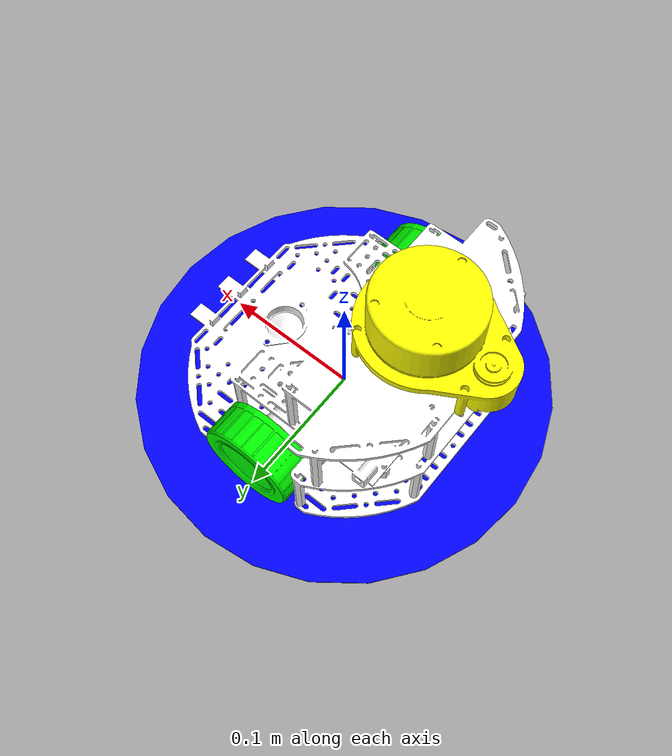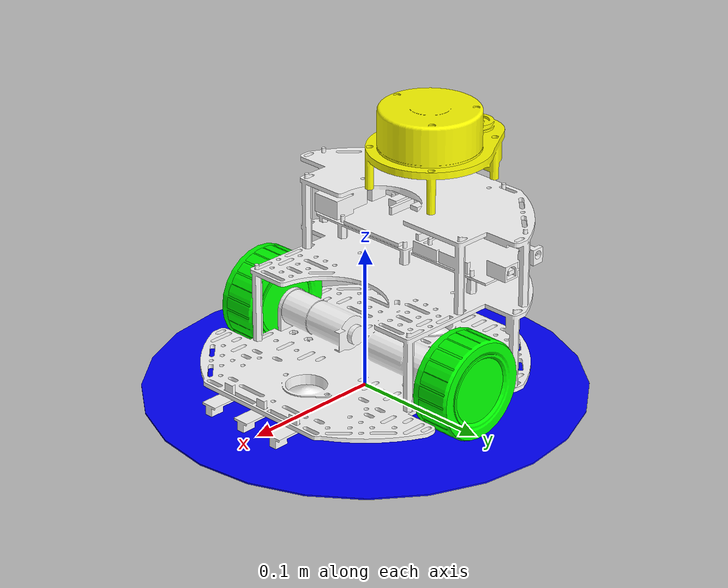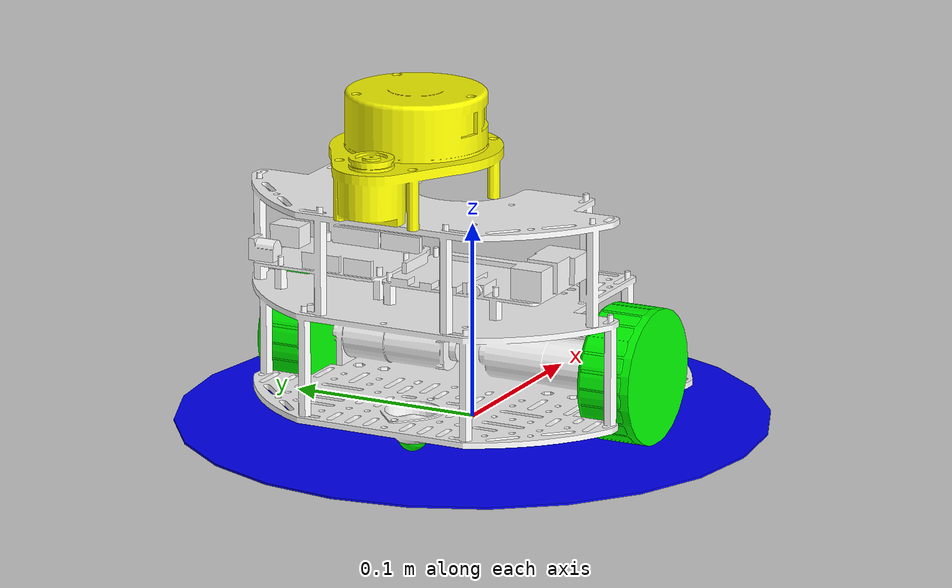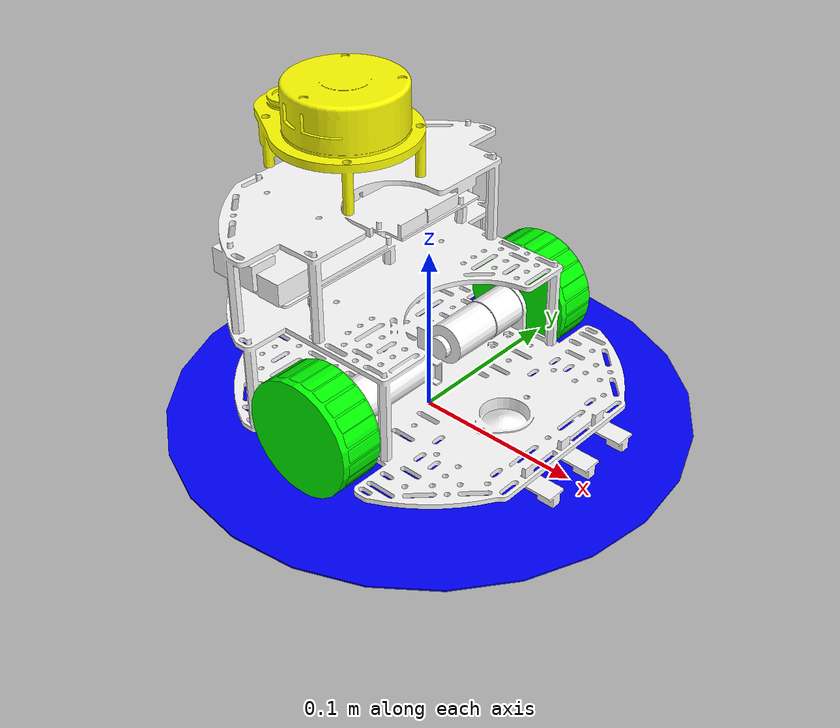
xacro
<?xml version="1.0" encoding="utf-8"?>
<robot name="frob"
	xmlns:xacro="http://www.ros.org/wiki/xacro">

	<xacro:property name="clearance" value="0" />
	<xacro:property name="wheel_radius" value="0.0344"/>
	<xacro:property name="wheel_separation" value="0.152"/>
	<xacro:property name="wheel_width" value="0.026"/>
	<xacro:property name="PI" value="3.1415926"/>

		<xacro:include filename="$(find frob_description)/urdf/frob_matherials.xacro" />

	<link name="base_link">
		<visual>
			<origin xyz="0 0 0" rpy="0 0 0" />
			<geometry>
				<sphere radius="0.001" />
			</geometry>
		</visual>
	</link>

	<link name="base_footprint">
		<visual>
			<origin xyz="0 0 0" rpy="0 0 0" />
			<geometry>
				<cylinder length="0.001" radius="0.150" />
			</geometry>
			<material name="Blue" />
		</visual>
	</link>

	<link name="robot_base">
		<inertial>
			<origin xyz="-0.017258 -0.00044491 0.079113" rpy="0 0 0"/>
			<mass value="0.71798"/>
			<inertia ixx="0.00077488" ixy="-3.248E-06" ixz="-9.2329E-06" iyy="0.00075836" iyz="2.2456E-06" izz="0.0014158"/>
		</inertial>

		<visual>
			<origin xyz="0 0 0" rpy="0 0 0" />
			<geometry>
				<mesh filename="package://frob_description/meshes/frob_base.STL" />
			</geometry>
			<material name="White" />
		</visual>

		<collision>
			<origin xyz="0 0 0" rpy="0 0 0" />
			<geometry>
				<mesh filename="package://frob_description/meshes/frob_base.STL" />
			</geometry>
		</collision>
	</link>

	<joint name="base_link_to_frob_base" type="fixed">
		<origin xyz="0 0 0" rpy="0 0 0" />
		<parent link="base_link" />
		<child link="robot_base" />
	</joint>

	<joint name="base_footprint_to_base_link" type="fixed">
		<origin xyz="0 0 ${clearance}" rpy="0 0 0" />
		<parent link="base_footprint" />
		<child link="base_link" />
	</joint>

	<xacro:include filename="$(find frob_description)/urdf/frob_left_wheel.xacro" />
	<xacro:include filename="$(find frob_description)/urdf/frob_right_wheel.xacro" />
	<xacro:include filename="$(find frob_description)/urdf/frob_caster_wheel.xacro" />
	<xacro:include filename="$(find frob_description)/urdf/frob_sensors.xacro" />
</robot>

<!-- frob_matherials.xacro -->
<robot
	xmlns:xacro="http://www.ros.org/wiki/xacro">
	<material name="Green">
		<color rgba="0.0 1.0 0.0 1.0"/>
	</material>
	<material name="Blue">
		<color rgba="0.0 0.0 1.0 1.0"/>
	</material>
	<material name="Red">
		<color rgba="1.0 0.0 0.0 1.0"/>
	</material>
	<material name="White">
		<color rgba="1.0 1.0 1.0 1.0"/>
	</material>
	<material name="Yellow">
		<color rgba="1.0 1.0 0.0 1.0"/>
	</material>
	<material name="Black">
		<color rgba="0.0 0.0 0.0 1.0"/>
	</material>
	<material name="White_Transparent">
		<color rgba="1.0 1.0 1.0 0.4"/>
	</material>
</robot>

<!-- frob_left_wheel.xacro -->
<robot name="frob"
	xmlns:xacro="http://www.ros.org/wiki/xacro">

	<link name="robot_left_wheel">
		<inertial>
			<origin xyz="1.9255E-10 0.00056576 -1.0414E-10" rpy="0 0 0"/>
			<mass value="0.050464"/>
			<inertia ixx="2.0701E-05" ixy="-3.8089E-14" ixz="1.3584E-15" iyy="3.5827E-05" iyz="2.1838E-15" izz="2.0701E-05"/>
		</inertial>

		<visual>
			<origin xyz="0 0 0" rpy="0 0 0" />
			<geometry>
				<mesh filename="package://frob_description/meshes/frob_left_wheel.STL" />
			</geometry>
			<material name="Green" />
		</visual>

		<collision>
			<origin xyz="0 0 0" rpy="0 0 0" />
			<geometry>
				<mesh filename="package://frob_description/meshes/frob_left_wheel.STL" />
			</geometry>
		</collision>
	</link>

	<link name="left_wheel">
		<visual>
			<origin xyz="0 0 0" rpy="${PI/2} 0 0" />
			<geometry>
				<cylinder length="${wheel_width}" radius="${wheel_radius}"/>
			</geometry>
			<material name="Green" />
		</visual>

		<collision>
			<origin xyz="0 0 0" rpy="${PI/2} 0 0" />
			<geometry>
				<cylinder length="${wheel_width}" radius="${wheel_radius}"/>
			</geometry>
		</collision>
	</link>

	<joint name="left_wheel_to_rbot_left_wheel" type="fixed">
		<origin xyz="0 0 0" rpy="0 0 0" />
		<parent link="left_wheel" />
		<child link="robot_left_wheel" />
	</joint>

	<joint name="left_wheel_to_base" type="continuous">
		<origin xyz="0 -0.0896 0.0344" rpy="0 0 0" />
		<parent link="robot_base" />
		<child link="left_wheel" />
		<axis xyz="0 1 0" />
	</joint>
</robot>

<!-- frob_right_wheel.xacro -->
<robot name="frob"
	xmlns:xacro="http://www.ros.org/wiki/xacro">

	<link name="robot_right_wheel">
		<inertial>
			<origin xyz="1.9255E-10 -0.00056576 1.0414E-10" rpy="0 0 0"/>
			<mass value="0.050464"/>
			<inertia ixx="2.0701E-05" ixy="3.8089E-14" ixz="-1.3584E-15" iyy="3.5827E-05" iyz="2.1838E-15" izz="2.0701E-05"/>
		</inertial>

		<visual>
			<origin xyz="0 0 0" rpy="0 0 0" />
			<geometry>
				<mesh filename="package://frob_description/meshes/frob_right_wheel.STL" />
			</geometry>
			<material name="Green" />
		</visual>

		<collision>
			<origin xyz="0 0 0" rpy="0 0 0" />
			<geometry>
				<mesh filename="package://frob_description/meshes/frob_right_wheel.STL" />
			</geometry>
		</collision>
	</link>

	<link name="right_wheel">
		<visual>
			<origin xyz="0 0 0" rpy="${PI/2} 0 0" />
			<geometry>
				<cylinder length="${wheel_width}" radius="${wheel_radius}"/>
			</geometry>
			<material name="Green" />
		</visual>

		<collision>
			<origin xyz="0 0 0" rpy="${PI/2} 0 0" />
			<geometry>
				<cylinder length="${wheel_width}" radius="${wheel_radius}"/>
			</geometry>
		</collision>
	</link>

	<joint name="right_wheel_to_robot_right_wheel" type="fixed">
		<origin xyz="0 0 0" rpy="0 0 0" />
		<parent link="right_wheel" />
		<child link="robot_right_wheel" />
	</joint>

	<joint name="right_wheel_to_base" type="continuous">
		<origin xyz="0 0.0896 0.0344" rpy="0 0 0" />
		<parent link="robot_base" />
		<child link="right_wheel" />
		<axis xyz="0 1 0" />
	</joint>
</robot>

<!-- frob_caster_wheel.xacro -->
<robot name="frob"
	xmlns:xacro="http://www.ros.org/wiki/xacro">

	<link name="robot_caster_wheel_1">
		<inertial>
			<origin xyz="0 1.6073E-19 0" rpy="0 0 0"/>
			<mass value="0.011207"/>
			<inertia ixx="2.1965E-07" ixy="-1.5533E-55" ixz="-1.9776E-56" iyy="2.1965E-07" iyz="-2.2674E-40" izz="2.1965E-07"/>
		</inertial>

		<visual>
			<origin xyz="0 0 0" rpy="0 0 0" />
			<geometry>
				<mesh filename="package://frob_description/meshes/frob_caster_wheel.STL" />
			</geometry>
			<material name="Green" />
		</visual>

		<collision>
			<origin xyz="0 0 0" rpy="0 0 0" />
			<geometry>
				<mesh filename="package://frob_description/meshes/frob_caster_wheel.STL" />
			</geometry>
		</collision>
	</link>

	<link name="robot_caster_wheel_2">
		<inertial>
			<origin xyz="0 1.6073E-19 0" rpy="0 0 0"/>
			<mass value="0.011207"/>
			<inertia ixx="2.1965E-07" ixy="-1.5533E-55" ixz="-1.9776E-56" iyy="2.1965E-07" iyz="-2.2674E-40" izz="2.1965E-07"/>
		</inertial>

		<visual>
			<origin xyz="0 0 0" rpy="0 0 0" />
			<geometry>
				<mesh filename="package://frob_description/meshes/frob_caster_wheel.STL" />
			</geometry>
			<material name="Green" />
		</visual>

		<collision>
			<origin xyz="0 0 0" rpy="0 0 0" />
			<geometry>
				<mesh filename="package://frob_description/meshes/frob_caster_wheel.STL" />
			</geometry>
		</collision>
	</link>

	<joint name="caster_wheel_1_to_base" type="continuous">
		<origin xyz="-0.065 0 0.0075" rpy="0 0 0" />
		<parent link="robot_base" />
		<child link="robot_caster_wheel_1" />
		<axis xyz="0 1 0" />
	</joint>

	<joint name="caster_wheel_2_to_base" type="continuous">
		<origin xyz="0.055 0 0.0075" rpy="0 0 0" />
		<parent link="robot_base" />
		<child link="robot_caster_wheel_2" />
		<axis xyz="0 1 0" />
	</joint>
</robot>

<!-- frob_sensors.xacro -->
<robot name="frob"
	xmlns:xacro="http://www.ros.org/wiki/xacro">

	<link name="robot_lidar">
		<inertial>
			<origin xyz="0 0 0" rpy="0 0 0"/>
			<mass value="0"/>
			<inertia ixx="0" ixy="0" ixz="0" iyy="0" iyz="0" izz="0"/>
		</inertial>

		<visual>
			<origin xyz="0 0 0" rpy="0 0 0"/>
			<geometry>
				<mesh filename="package://frob_description/meshes/frob_lidar.STL"/>
			</geometry>
			<material name="Yellow"/>
		</visual>

		<collision>
			<origin xyz="0 0 0" rpy="0 0 0"/>
			<geometry>
				<mesh filename="package://frob_description/meshes/frob_lidar.STL"/>
			</geometry>
		</collision>
	</link>

	<joint name="lidar_to_base" type="fixed">
		<origin xyz="-0.06 0.0002 0.15" rpy="0 0 ${PI}"/>
		<parent link="robot_base"/>
		<child link="robot_lidar"/>
		<axis xyz="0 0 0"/>
	</joint>
</robot>
